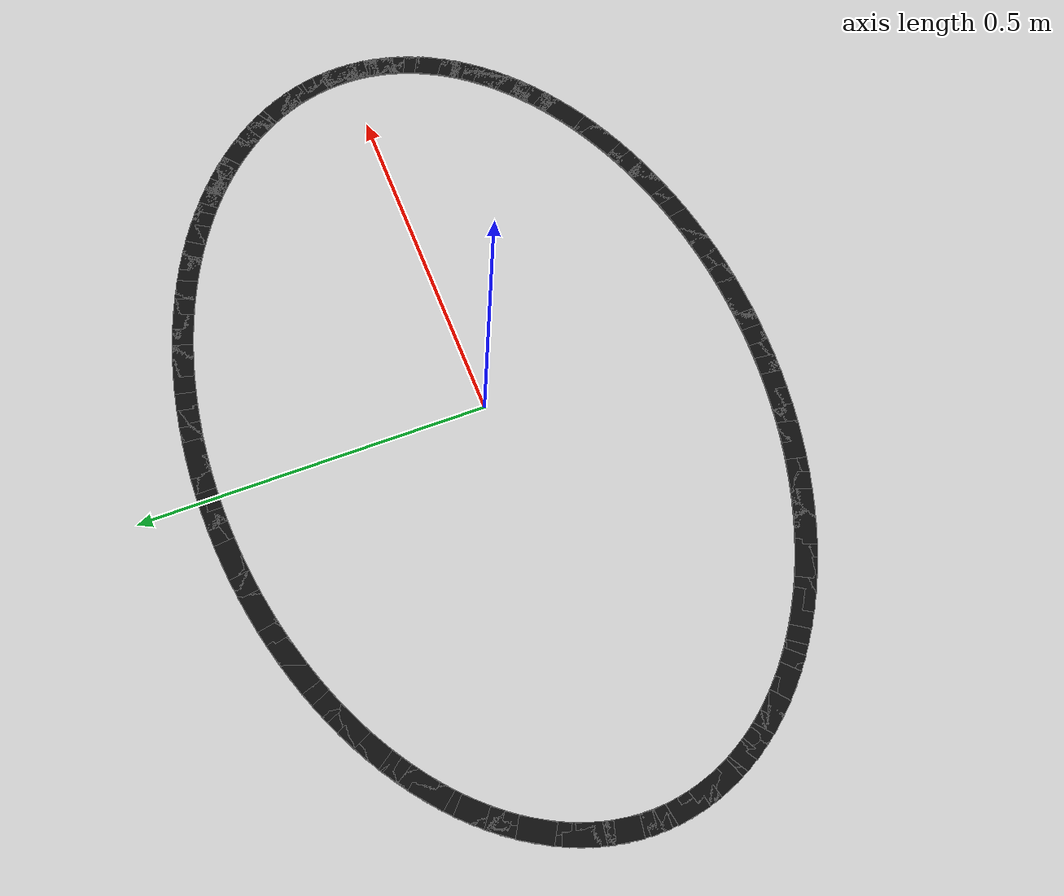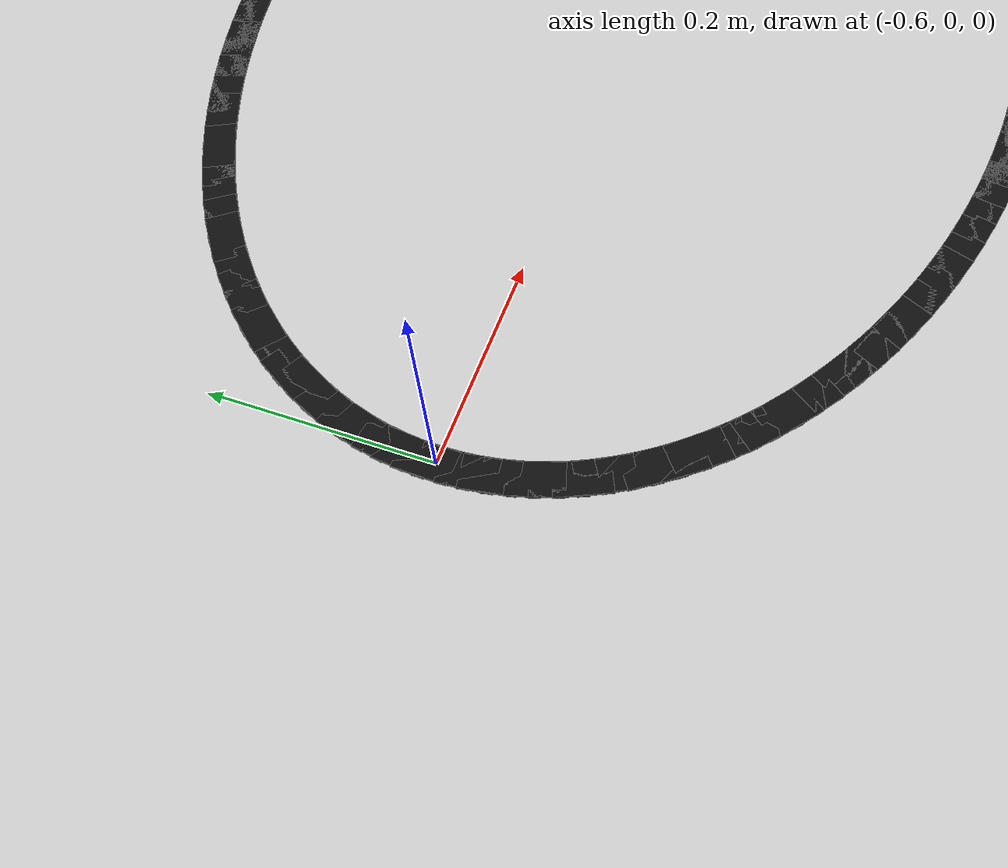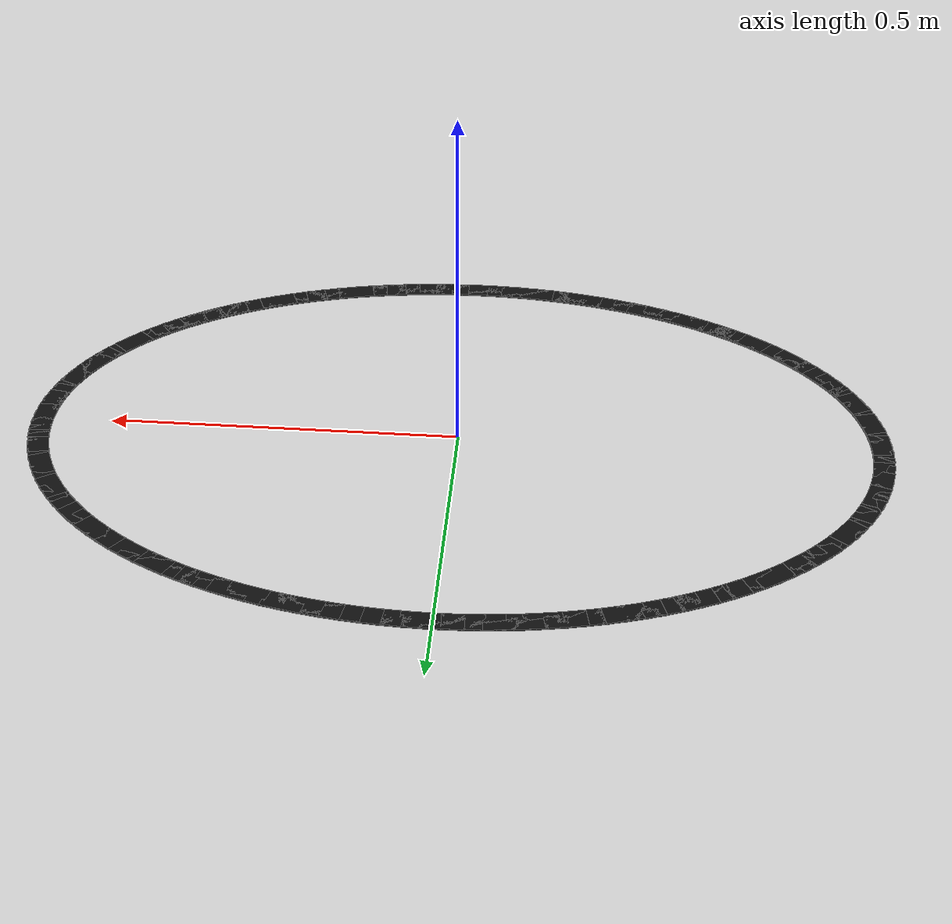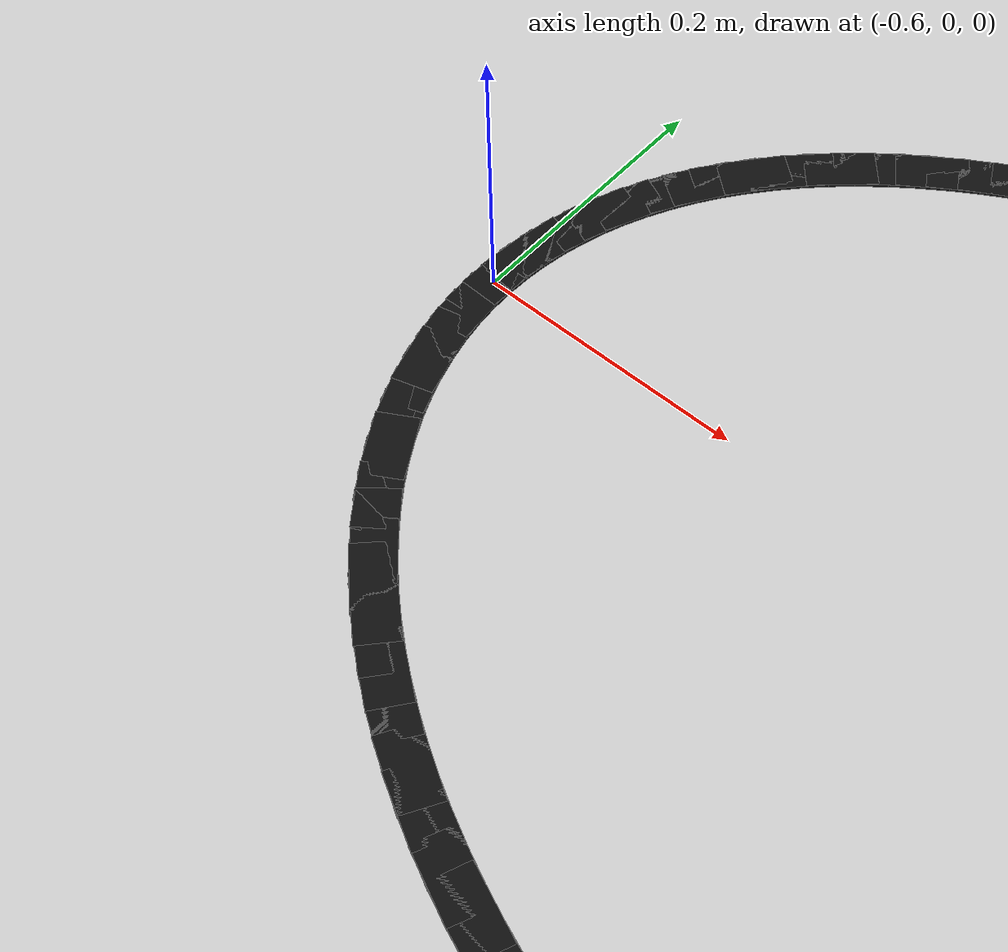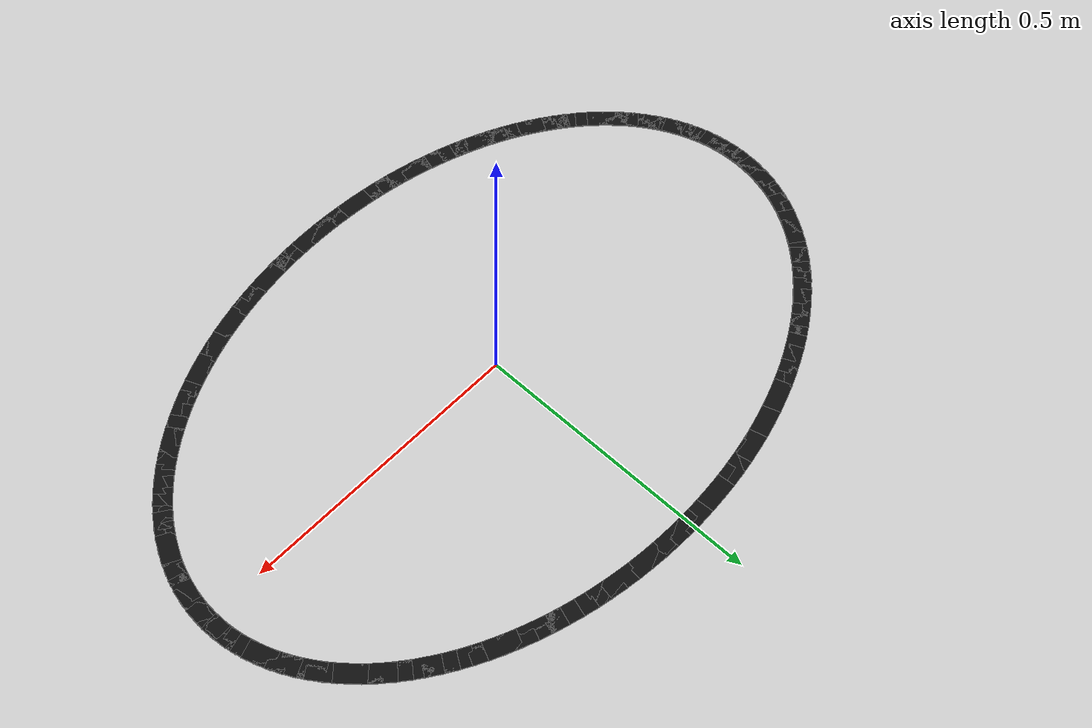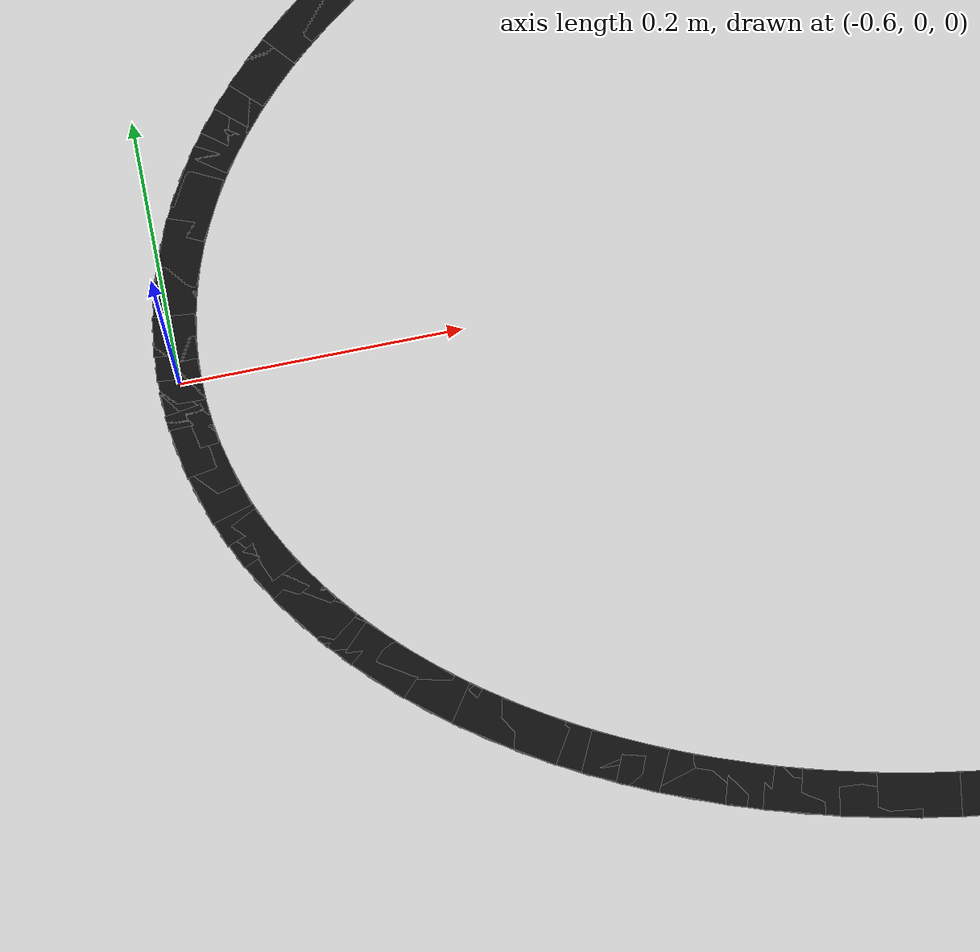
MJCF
<mujoco model="track_oval">
  <worldbody>
    <geom name="line_0" type="box" size="0.0237 0.015 0.001" pos="0.5997 0.0087 0.001" quat="0.695445 0 0 0.718579" contype="0" conaffinity="0" group="2" rgba="0.05 0.05 0.05 1"/>
    <geom name="line_1" type="box" size="0.0237 0.015 0.001" pos="0.5986 0.0262 0.001" quat="0.671624 0 0 0.740893" contype="0" conaffinity="0" group="2" rgba="0.05 0.05 0.05 1"/>
    <geom name="line_2" type="box" size="0.0238 0.015 0.001" pos="0.5963 0.0435 0.001" quat="0.647262 0 0 0.762268" contype="0" conaffinity="0" group="2" rgba="0.05 0.05 0.05 1"/>
    <geom name="line_3" type="box" size="0.0239 0.015 0.001" pos="0.5929 0.0608 0.001" quat="0.622513 0 0 0.782609" contype="0" conaffinity="0" group="2" rgba="0.05 0.05 0.05 1"/>
    <geom name="line_4" type="box" size="0.0239 0.015 0.001" pos="0.5883 0.0780 0.001" quat="0.597531 0 0 0.801846" contype="0" conaffinity="0" group="2" rgba="0.05 0.05 0.05 1"/>
    <geom name="line_5" type="box" size="0.0240 0.015 0.001" pos="0.5827 0.0951 0.001" quat="0.572464 0 0 0.819930" contype="0" conaffinity="0" group="2" rgba="0.05 0.05 0.05 1"/>
    <geom name="line_6" type="box" size="0.0241 0.015 0.001" pos="0.5759 0.1119 0.001" quat="0.547451 0 0 0.836838" contype="0" conaffinity="0" group="2" rgba="0.05 0.05 0.05 1"/>
    <geom name="line_7" type="box" size="0.0243 0.015 0.001" pos="0.5680 0.1285 0.001" quat="0.522615 0 0 0.852569" contype="0" conaffinity="0" group="2" rgba="0.05 0.05 0.05 1"/>
    <geom name="line_8" type="box" size="0.0244 0.015 0.001" pos="0.5591 0.1449 0.001" quat="0.498066 0 0 0.867139" contype="0" conaffinity="0" group="2" rgba="0.05 0.05 0.05 1"/>
    <geom name="line_9" type="box" size="0.0246 0.015 0.001" pos="0.5491 0.1611 0.001" quat="0.473893 0 0 0.880583" contype="0" conaffinity="0" group="2" rgba="0.05 0.05 0.05 1"/>
    <geom name="line_10" type="box" size="0.0247 0.015 0.001" pos="0.5380 0.1769 0.001" quat="0.450169 0 0 0.892944" contype="0" conaffinity="0" group="2" rgba="0.05 0.05 0.05 1"/>
    <geom name="line_11" type="box" size="0.0249 0.015 0.001" pos="0.5259 0.1923 0.001" quat="0.426948 0 0 0.904276" contype="0" conaffinity="0" group="2" rgba="0.05 0.05 0.05 1"/>
    <geom name="line_12" type="box" size="0.0251 0.015 0.001" pos="0.5128 0.2075 0.001" quat="0.404270 0 0 0.914639" contype="0" conaffinity="0" group="2" rgba="0.05 0.05 0.05 1"/>
    <geom name="line_13" type="box" size="0.0253 0.015 0.001" pos="0.4988 0.2222 0.001" quat="0.382160 0 0 0.924096" contype="0" conaffinity="0" group="2" rgba="0.05 0.05 0.05 1"/>
    <geom name="line_14" type="box" size="0.0255 0.015 0.001" pos="0.4838 0.2365 0.001" quat="0.360629 0 0 0.932709" contype="0" conaffinity="0" group="2" rgba="0.05 0.05 0.05 1"/>
    <geom name="line_15" type="box" size="0.0257 0.015 0.001" pos="0.4678 0.2503 0.001" quat="0.339680 0 0 0.940541" contype="0" conaffinity="0" group="2" rgba="0.05 0.05 0.05 1"/>
    <geom name="line_16" type="box" size="0.0258 0.015 0.001" pos="0.4510 0.2637 0.001" quat="0.319304 0 0 0.947652" contype="0" conaffinity="0" group="2" rgba="0.05 0.05 0.05 1"/>
    <geom name="line_17" type="box" size="0.0260 0.015 0.001" pos="0.4333 0.2765 0.001" quat="0.299488 0 0 0.954100" contype="0" conaffinity="0" group="2" rgba="0.05 0.05 0.05 1"/>
    <geom name="line_18" type="box" size="0.0262 0.015 0.001" pos="0.4148 0.2889 0.001" quat="0.280213 0 0 0.959938" contype="0" conaffinity="0" group="2" rgba="0.05 0.05 0.05 1"/>
    <geom name="line_19" type="box" size="0.0264 0.015 0.001" pos="0.3955 0.3007 0.001" quat="0.261454 0 0 0.965216" contype="0" conaffinity="0" group="2" rgba="0.05 0.05 0.05 1"/>
    <geom name="line_20" type="box" size="0.0266 0.015 0.001" pos="0.3755 0.3119 0.001" quat="0.243186 0 0 0.969980" contype="0" conaffinity="0" group="2" rgba="0.05 0.05 0.05 1"/>
    <geom name="line_21" type="box" size="0.0267 0.015 0.001" pos="0.3547 0.3225 0.001" quat="0.225379 0 0 0.974271" contype="0" conaffinity="0" group="2" rgba="0.05 0.05 0.05 1"/>
    <geom name="line_22" type="box" size="0.0269 0.015 0.001" pos="0.3333 0.3325 0.001" quat="0.208003 0 0 0.978128" contype="0" conaffinity="0" group="2" rgba="0.05 0.05 0.05 1"/>
    <geom name="line_23" type="box" size="0.0271 0.015 0.001" pos="0.3112 0.3419 0.001" quat="0.191027 0 0 0.981585" contype="0" conaffinity="0" group="2" rgba="0.05 0.05 0.05 1"/>
    <geom name="line_24" type="box" size="0.0272 0.015 0.001" pos="0.2885 0.3506 0.001" quat="0.174420 0 0 0.984671" contype="0" conaffinity="0" group="2" rgba="0.05 0.05 0.05 1"/>
    <geom name="line_25" type="box" size="0.0274 0.015 0.001" pos="0.2653 0.3587 0.001" quat="0.158149 0 0 0.987415" contype="0" conaffinity="0" group="2" rgba="0.05 0.05 0.05 1"/>
    <geom name="line_26" type="box" size="0.0275 0.015 0.001" pos="0.2416 0.3660 0.001" quat="0.142184 0 0 0.989840" contype="0" conaffinity="0" group="2" rgba="0.05 0.05 0.05 1"/>
    <geom name="line_27" type="box" size="0.0276 0.015 0.001" pos="0.2174 0.3727 0.001" quat="0.126494 0 0 0.991967" contype="0" conaffinity="0" group="2" rgba="0.05 0.05 0.05 1"/>
    <geom name="line_28" type="box" size="0.0277 0.015 0.001" pos="0.1928 0.3787 0.001" quat="0.111048 0 0 0.993815" contype="0" conaffinity="0" group="2" rgba="0.05 0.05 0.05 1"/>
    <geom name="line_29" type="box" size="0.0278 0.015 0.001" pos="0.1679 0.3839 0.001" quat="0.095815 0 0 0.995399" contype="0" conaffinity="0" group="2" rgba="0.05 0.05 0.05 1"/>
    <geom name="line_30" type="box" size="0.0279 0.015 0.001" pos="0.1426 0.3884 0.001" quat="0.080766 0 0 0.996733" contype="0" conaffinity="0" group="2" rgba="0.05 0.05 0.05 1"/>
    <geom name="line_31" type="box" size="0.0279 0.015 0.001" pos="0.1170 0.3922 0.001" quat="0.065872 0 0 0.997828" contype="0" conaffinity="0" group="2" rgba="0.05 0.05 0.05 1"/>
    <geom name="line_32" type="box" size="0.0280 0.015 0.001" pos="0.0913 0.3953 0.001" quat="0.051104 0 0 0.998693" contype="0" conaffinity="0" group="2" rgba="0.05 0.05 0.05 1"/>
    <geom name="line_33" type="box" size="0.0280 0.015 0.001" pos="0.0653 0.3975 0.001" quat="0.036433 0 0 0.999336" contype="0" conaffinity="0" group="2" rgba="0.05 0.05 0.05 1"/>
    <geom name="line_34" type="box" size="0.0281 0.015 0.001" pos="0.0392 0.3990 0.001" quat="0.021832 0 0 0.999762" contype="0" conaffinity="0" group="2" rgba="0.05 0.05 0.05 1"/>
    <geom name="line_35" type="box" size="0.0281 0.015 0.001" pos="0.0131 0.3998 0.001" quat="0.007273 0 0 0.999974" contype="0" conaffinity="0" group="2" rgba="0.05 0.05 0.05 1"/>
    <geom name="line_36" type="box" size="0.0281 0.015 0.001" pos="-0.0131 0.3998 0.001" quat="0.007273 0 0 -0.999974" contype="0" conaffinity="0" group="2" rgba="0.05 0.05 0.05 1"/>
    <geom name="line_37" type="box" size="0.0281 0.015 0.001" pos="-0.0392 0.3990 0.001" quat="0.021832 0 0 -0.999762" contype="0" conaffinity="0" group="2" rgba="0.05 0.05 0.05 1"/>
    <geom name="line_38" type="box" size="0.0280 0.015 0.001" pos="-0.0653 0.3975 0.001" quat="0.036433 0 0 -0.999336" contype="0" conaffinity="0" group="2" rgba="0.05 0.05 0.05 1"/>
    <geom name="line_39" type="box" size="0.0280 0.015 0.001" pos="-0.0913 0.3953 0.001" quat="0.051104 0 0 -0.998693" contype="0" conaffinity="0" group="2" rgba="0.05 0.05 0.05 1"/>
    <geom name="line_40" type="box" size="0.0279 0.015 0.001" pos="-0.1170 0.3922 0.001" quat="0.065872 0 0 -0.997828" contype="0" conaffinity="0" group="2" rgba="0.05 0.05 0.05 1"/>
    <geom name="line_41" type="box" size="0.0279 0.015 0.001" pos="-0.1426 0.3884 0.001" quat="0.080766 0 0 -0.996733" contype="0" conaffinity="0" group="2" rgba="0.05 0.05 0.05 1"/>
    <geom name="line_42" type="box" size="0.0278 0.015 0.001" pos="-0.1679 0.3839 0.001" quat="0.095815 0 0 -0.995399" contype="0" conaffinity="0" group="2" rgba="0.05 0.05 0.05 1"/>
    <geom name="line_43" type="box" size="0.0277 0.015 0.001" pos="-0.1928 0.3787 0.001" quat="0.111048 0 0 -0.993815" contype="0" conaffinity="0" group="2" rgba="0.05 0.05 0.05 1"/>
    <geom name="line_44" type="box" size="0.0276 0.015 0.001" pos="-0.2174 0.3727 0.001" quat="0.126494 0 0 -0.991967" contype="0" conaffinity="0" group="2" rgba="0.05 0.05 0.05 1"/>
    <geom name="line_45" type="box" size="0.0275 0.015 0.001" pos="-0.2416 0.3660 0.001" quat="0.142184 0 0 -0.989840" contype="0" conaffinity="0" group="2" rgba="0.05 0.05 0.05 1"/>
    <geom name="line_46" type="box" size="0.0274 0.015 0.001" pos="-0.2653 0.3587 0.001" quat="0.158149 0 0 -0.987415" contype="0" conaffinity="0" group="2" rgba="0.05 0.05 0.05 1"/>
    <geom name="line_47" type="box" size="0.0272 0.015 0.001" pos="-0.2885 0.3506 0.001" quat="0.174420 0 0 -0.984671" contype="0" conaffinity="0" group="2" rgba="0.05 0.05 0.05 1"/>
    <geom name="line_48" type="box" size="0.0271 0.015 0.001" pos="-0.3112 0.3419 0.001" quat="0.191027 0 0 -0.981585" contype="0" conaffinity="0" group="2" rgba="0.05 0.05 0.05 1"/>
    <geom name="line_49" type="box" size="0.0269 0.015 0.001" pos="-0.3333 0.3325 0.001" quat="0.208003 0 0 -0.978128" contype="0" conaffinity="0" group="2" rgba="0.05 0.05 0.05 1"/>
    <geom name="line_50" type="box" size="0.0267 0.015 0.001" pos="-0.3547 0.3225 0.001" quat="0.225379 0 0 -0.974271" contype="0" conaffinity="0" group="2" rgba="0.05 0.05 0.05 1"/>
    <geom name="line_51" type="box" size="0.0266 0.015 0.001" pos="-0.3755 0.3119 0.001" quat="0.243186 0 0 -0.969980" contype="0" conaffinity="0" group="2" rgba="0.05 0.05 0.05 1"/>
    <geom name="line_52" type="box" size="0.0264 0.015 0.001" pos="-0.3955 0.3007 0.001" quat="0.261454 0 0 -0.965216" contype="0" conaffinity="0" group="2" rgba="0.05 0.05 0.05 1"/>
    <geom name="line_53" type="box" size="0.0262 0.015 0.001" pos="-0.4148 0.2889 0.001" quat="0.280213 0 0 -0.959938" contype="0" conaffinity="0" group="2" rgba="0.05 0.05 0.05 1"/>
    <geom name="line_54" type="box" size="0.0260 0.015 0.001" pos="-0.4333 0.2765 0.001" quat="0.299488 0 0 -0.954100" contype="0" conaffinity="0" group="2" rgba="0.05 0.05 0.05 1"/>
    <geom name="line_55" type="box" size="0.0258 0.015 0.001" pos="-0.4510 0.2637 0.001" quat="0.319304 0 0 -0.947652" contype="0" conaffinity="0" group="2" rgba="0.05 0.05 0.05 1"/>
    <geom name="line_56" type="box" size="0.0257 0.015 0.001" pos="-0.4678 0.2503 0.001" quat="0.339680 0 0 -0.940541" contype="0" conaffinity="0" group="2" rgba="0.05 0.05 0.05 1"/>
    <geom name="line_57" type="box" size="0.0255 0.015 0.001" pos="-0.4838 0.2365 0.001" quat="0.360629 0 0 -0.932709" contype="0" conaffinity="0" group="2" rgba="0.05 0.05 0.05 1"/>
    <geom name="line_58" type="box" size="0.0253 0.015 0.001" pos="-0.4988 0.2222 0.001" quat="0.382160 0 0 -0.924096" contype="0" conaffinity="0" group="2" rgba="0.05 0.05 0.05 1"/>
    <geom name="line_59" type="box" size="0.0251 0.015 0.001" pos="-0.5128 0.2075 0.001" quat="0.404270 0 0 -0.914639" contype="0" conaffinity="0" group="2" rgba="0.05 0.05 0.05 1"/>
    <geom name="line_60" type="box" size="0.0249 0.015 0.001" pos="-0.5259 0.1923 0.001" quat="0.426948 0 0 -0.904276" contype="0" conaffinity="0" group="2" rgba="0.05 0.05 0.05 1"/>
    <geom name="line_61" type="box" size="0.0247 0.015 0.001" pos="-0.5380 0.1769 0.001" quat="0.450169 0 0 -0.892944" contype="0" conaffinity="0" group="2" rgba="0.05 0.05 0.05 1"/>
    <geom name="line_62" type="box" size="0.0246 0.015 0.001" pos="-0.5491 0.1611 0.001" quat="0.473893 0 0 -0.880583" contype="0" conaffinity="0" group="2" rgba="0.05 0.05 0.05 1"/>
    <geom name="line_63" type="box" size="0.0244 0.015 0.001" pos="-0.5591 0.1449 0.001" quat="0.498066 0 0 -0.867139" contype="0" conaffinity="0" group="2" rgba="0.05 0.05 0.05 1"/>
    <geom name="line_64" type="box" size="0.0243 0.015 0.001" pos="-0.5680 0.1285 0.001" quat="0.522615 0 0 -0.852569" contype="0" conaffinity="0" group="2" rgba="0.05 0.05 0.05 1"/>
    <geom name="line_65" type="box" size="0.0241 0.015 0.001" pos="-0.5759 0.1119 0.001" quat="0.547451 0 0 -0.836838" contype="0" conaffinity="0" group="2" rgba="0.05 0.05 0.05 1"/>
    <geom name="line_66" type="box" size="0.0240 0.015 0.001" pos="-0.5827 0.0951 0.001" quat="0.572464 0 0 -0.819930" contype="0" conaffinity="0" group="2" rgba="0.05 0.05 0.05 1"/>
    <geom name="line_67" type="box" size="0.0239 0.015 0.001" pos="-0.5883 0.0780 0.001" quat="0.597531 0 0 -0.801846" contype="0" conaffinity="0" group="2" rgba="0.05 0.05 0.05 1"/>
    <geom name="line_68" type="box" size="0.0239 0.015 0.001" pos="-0.5929 0.0608 0.001" quat="0.622513 0 0 -0.782609" contype="0" conaffinity="0" group="2" rgba="0.05 0.05 0.05 1"/>
    <geom name="line_69" type="box" size="0.0238 0.015 0.001" pos="-0.5963 0.0435 0.001" quat="0.647262 0 0 -0.762268" contype="0" conaffinity="0" group="2" rgba="0.05 0.05 0.05 1"/>
    <geom name="line_70" type="box" size="0.0237 0.015 0.001" pos="-0.5986 0.0262 0.001" quat="0.671624 0 0 -0.740893" contype="0" conaffinity="0" group="2" rgba="0.05 0.05 0.05 1"/>
    <geom name="line_71" type="box" size="0.0237 0.015 0.001" pos="-0.5997 0.0087 0.001" quat="0.695445 0 0 -0.718579" contype="0" conaffinity="0" group="2" rgba="0.05 0.05 0.05 1"/>
    <geom name="line_72" type="box" size="0.0237 0.015 0.001" pos="-0.5997 -0.0087 0.001" quat="0.718579 0 0 -0.695445" contype="0" conaffinity="0" group="2" rgba="0.05 0.05 0.05 1"/>
    <geom name="line_73" type="box" size="0.0237 0.015 0.001" pos="-0.5986 -0.0262 0.001" quat="0.740893 0 0 -0.671624" contype="0" conaffinity="0" group="2" rgba="0.05 0.05 0.05 1"/>
    <geom name="line_74" type="box" size="0.0238 0.015 0.001" pos="-0.5963 -0.0435 0.001" quat="0.762268 0 0 -0.647262" contype="0" conaffinity="0" group="2" rgba="0.05 0.05 0.05 1"/>
    <geom name="line_75" type="box" size="0.0239 0.015 0.001" pos="-0.5929 -0.0608 0.001" quat="0.782609 0 0 -0.622513" contype="0" conaffinity="0" group="2" rgba="0.05 0.05 0.05 1"/>
    <geom name="line_76" type="box" size="0.0239 0.015 0.001" pos="-0.5883 -0.0780 0.001" quat="0.801846 0 0 -0.597531" contype="0" conaffinity="0" group="2" rgba="0.05 0.05 0.05 1"/>
    <geom name="line_77" type="box" size="0.0240 0.015 0.001" pos="-0.5827 -0.0951 0.001" quat="0.819930 0 0 -0.572464" contype="0" conaffinity="0" group="2" rgba="0.05 0.05 0.05 1"/>
    <geom name="line_78" type="box" size="0.0241 0.015 0.001" pos="-0.5759 -0.1119 0.001" quat="0.836838 0 0 -0.547451" contype="0" conaffinity="0" group="2" rgba="0.05 0.05 0.05 1"/>
    <geom name="line_79" type="box" size="0.0243 0.015 0.001" pos="-0.5680 -0.1285 0.001" quat="0.852569 0 0 -0.522615" contype="0" conaffinity="0" group="2" rgba="0.05 0.05 0.05 1"/>
    <geom name="line_80" type="box" size="0.0244 0.015 0.001" pos="-0.5591 -0.1449 0.001" quat="0.867139 0 0 -0.498066" contype="0" conaffinity="0" group="2" rgba="0.05 0.05 0.05 1"/>
    <geom name="line_81" type="box" size="0.0246 0.015 0.001" pos="-0.5491 -0.1611 0.001" quat="0.880583 0 0 -0.473893" contype="0" conaffinity="0" group="2" rgba="0.05 0.05 0.05 1"/>
    <geom name="line_82" type="box" size="0.0247 0.015 0.001" pos="-0.5380 -0.1769 0.001" quat="0.892944 0 0 -0.450169" contype="0" conaffinity="0" group="2" rgba="0.05 0.05 0.05 1"/>
    <geom name="line_83" type="box" size="0.0249 0.015 0.001" pos="-0.5259 -0.1923 0.001" quat="0.904276 0 0 -0.426948" contype="0" conaffinity="0" group="2" rgba="0.05 0.05 0.05 1"/>
    <geom name="line_84" type="box" size="0.0251 0.015 0.001" pos="-0.5128 -0.2075 0.001" quat="0.914639 0 0 -0.404270" contype="0" conaffinity="0" group="2" rgba="0.05 0.05 0.05 1"/>
    <geom name="line_85" type="box" size="0.0253 0.015 0.001" pos="-0.4988 -0.2222 0.001" quat="0.924096 0 0 -0.382160" contype="0" conaffinity="0" group="2" rgba="0.05 0.05 0.05 1"/>
    <geom name="line_86" type="box" size="0.0255 0.015 0.001" pos="-0.4838 -0.2365 0.001" quat="0.932709 0 0 -0.360629" contype="0" conaffinity="0" group="2" rgba="0.05 0.05 0.05 1"/>
    <geom name="line_87" type="box" size="0.0257 0.015 0.001" pos="-0.4678 -0.2503 0.001" quat="0.940541 0 0 -0.339680" contype="0" conaffinity="0" group="2" rgba="0.05 0.05 0.05 1"/>
    <geom name="line_88" type="box" size="0.0258 0.015 0.001" pos="-0.4510 -0.2637 0.001" quat="0.947652 0 0 -0.319304" contype="0" conaffinity="0" group="2" rgba="0.05 0.05 0.05 1"/>
    <geom name="line_89" type="box" size="0.0260 0.015 0.001" pos="-0.4333 -0.2765 0.001" quat="0.954100 0 0 -0.299488" contype="0" conaffinity="0" group="2" rgba="0.05 0.05 0.05 1"/>
    <geom name="line_90" type="box" size="0.0262 0.015 0.001" pos="-0.4148 -0.2889 0.001" quat="0.959938 0 0 -0.280213" contype="0" conaffinity="0" group="2" rgba="0.05 0.05 0.05 1"/>
    <geom name="line_91" type="box" size="0.0264 0.015 0.001" pos="-0.3955 -0.3007 0.001" quat="0.965216 0 0 -0.261454" contype="0" conaffinity="0" group="2" rgba="0.05 0.05 0.05 1"/>
    <geom name="line_92" type="box" size="0.0266 0.015 0.001" pos="-0.3755 -0.3119 0.001" quat="0.969980 0 0 -0.243186" contype="0" conaffinity="0" group="2" rgba="0.05 0.05 0.05 1"/>
    <geom name="line_93" type="box" size="0.0267 0.015 0.001" pos="-0.3547 -0.3225 0.001" quat="0.974271 0 0 -0.225379" contype="0" conaffinity="0" group="2" rgba="0.05 0.05 0.05 1"/>
    <geom name="line_94" type="box" size="0.0269 0.015 0.001" pos="-0.3333 -0.3325 0.001" quat="0.978128 0 0 -0.208003" contype="0" conaffinity="0" group="2" rgba="0.05 0.05 0.05 1"/>
    <geom name="line_95" type="box" size="0.0271 0.015 0.001" pos="-0.3112 -0.3419 0.001" quat="0.981585 0 0 -0.191027" contype="0" conaffinity="0" group="2" rgba="0.05 0.05 0.05 1"/>
    <geom name="line_96" type="box" size="0.0272 0.015 0.001" pos="-0.2885 -0.3506 0.001" quat="0.984671 0 0 -0.174420" contype="0" conaffinity="0" group="2" rgba="0.05 0.05 0.05 1"/>
    <geom name="line_97" type="box" size="0.0274 0.015 0.001" pos="-0.2653 -0.3587 0.001" quat="0.987415 0 0 -0.158149" contype="0" conaffinity="0" group="2" rgba="0.05 0.05 0.05 1"/>
    <geom name="line_98" type="box" size="0.0275 0.015 0.001" pos="-0.2416 -0.3660 0.001" quat="0.989840 0 0 -0.142184" contype="0" conaffinity="0" group="2" rgba="0.05 0.05 0.05 1"/>
    <geom name="line_99" type="box" size="0.0276 0.015 0.001" pos="-0.2174 -0.3727 0.001" quat="0.991967 0 0 -0.126494" contype="0" conaffinity="0" group="2" rgba="0.05 0.05 0.05 1"/>
    <geom name="line_100" type="box" size="0.0277 0.015 0.001" pos="-0.1928 -0.3787 0.001" quat="0.993815 0 0 -0.111048" contype="0" conaffinity="0" group="2" rgba="0.05 0.05 0.05 1"/>
    <geom name="line_101" type="box" size="0.0278 0.015 0.001" pos="-0.1679 -0.3839 0.001" quat="0.995399 0 0 -0.095815" contype="0" conaffinity="0" group="2" rgba="0.05 0.05 0.05 1"/>
    <geom name="line_102" type="box" size="0.0279 0.015 0.001" pos="-0.1426 -0.3884 0.001" quat="0.996733 0 0 -0.080766" contype="0" conaffinity="0" group="2" rgba="0.05 0.05 0.05 1"/>
    <geom name="line_103" type="box" size="0.0279 0.015 0.001" pos="-0.1170 -0.3922 0.001" quat="0.997828 0 0 -0.065872" contype="0" conaffinity="0" group="2" rgba="0.05 0.05 0.05 1"/>
    <geom name="line_104" type="box" size="0.0280 0.015 0.001" pos="-0.0913 -0.3953 0.001" quat="0.998693 0 0 -0.051104" contype="0" conaffinity="0" group="2" rgba="0.05 0.05 0.05 1"/>
    <geom name="line_105" type="box" size="0.0280 0.015 0.001" pos="-0.0653 -0.3975 0.001" quat="0.999336 0 0 -0.036433" contype="0" conaffinity="0" group="2" rgba="0.05 0.05 0.05 1"/>
    <geom name="line_106" type="box" size="0.0281 0.015 0.001" pos="-0.0392 -0.3990 0.001" quat="0.999762 0 0 -0.021832" contype="0" conaffinity="0" group="2" rgba="0.05 0.05 0.05 1"/>
    <geom name="line_107" type="box" size="0.0281 0.015 0.001" pos="-0.0131 -0.3998 0.001" quat="0.999974 0 0 -0.007273" contype="0" conaffinity="0" group="2" rgba="0.05 0.05 0.05 1"/>
    <geom name="line_108" type="box" size="0.0281 0.015 0.001" pos="0.0131 -0.3998 0.001" quat="0.999974 0 0 0.007273" contype="0" conaffinity="0" group="2" rgba="0.05 0.05 0.05 1"/>
    <geom name="line_109" type="box" size="0.0281 0.015 0.001" pos="0.0392 -0.3990 0.001" quat="0.999762 0 0 0.021832" contype="0" conaffinity="0" group="2" rgba="0.05 0.05 0.05 1"/>
    <geom name="line_110" type="box" size="0.0280 0.015 0.001" pos="0.0653 -0.3975 0.001" quat="0.999336 0 0 0.036433" contype="0" conaffinity="0" group="2" rgba="0.05 0.05 0.05 1"/>
    <geom name="line_111" type="box" size="0.0280 0.015 0.001" pos="0.0913 -0.3953 0.001" quat="0.998693 0 0 0.051104" contype="0" conaffinity="0" group="2" rgba="0.05 0.05 0.05 1"/>
    <geom name="line_112" type="box" size="0.0279 0.015 0.001" pos="0.1170 -0.3922 0.001" quat="0.997828 0 0 0.065872" contype="0" conaffinity="0" group="2" rgba="0.05 0.05 0.05 1"/>
    <geom name="line_113" type="box" size="0.0279 0.015 0.001" pos="0.1426 -0.3884 0.001" quat="0.996733 0 0 0.080766" contype="0" conaffinity="0" group="2" rgba="0.05 0.05 0.05 1"/>
    <geom name="line_114" type="box" size="0.0278 0.015 0.001" pos="0.1679 -0.3839 0.001" quat="0.995399 0 0 0.095815" contype="0" conaffinity="0" group="2" rgba="0.05 0.05 0.05 1"/>
    <geom name="line_115" type="box" size="0.0277 0.015 0.001" pos="0.1928 -0.3787 0.001" quat="0.993815 0 0 0.111048" contype="0" conaffinity="0" group="2" rgba="0.05 0.05 0.05 1"/>
    <geom name="line_116" type="box" size="0.0276 0.015 0.001" pos="0.2174 -0.3727 0.001" quat="0.991967 0 0 0.126494" contype="0" conaffinity="0" group="2" rgba="0.05 0.05 0.05 1"/>
    <geom name="line_117" type="box" size="0.0275 0.015 0.001" pos="0.2416 -0.3660 0.001" quat="0.989840 0 0 0.142184" contype="0" conaffinity="0" group="2" rgba="0.05 0.05 0.05 1"/>
    <geom name="line_118" type="box" size="0.0274 0.015 0.001" pos="0.2653 -0.3587 0.001" quat="0.987415 0 0 0.158149" contype="0" conaffinity="0" group="2" rgba="0.05 0.05 0.05 1"/>
    <geom name="line_119" type="box" size="0.0272 0.015 0.001" pos="0.2885 -0.3506 0.001" quat="0.984671 0 0 0.174420" contype="0" conaffinity="0" group="2" rgba="0.05 0.05 0.05 1"/>
    <geom name="line_120" type="box" size="0.0271 0.015 0.001" pos="0.3112 -0.3419 0.001" quat="0.981585 0 0 0.191027" contype="0" conaffinity="0" group="2" rgba="0.05 0.05 0.05 1"/>
    <geom name="line_121" type="box" size="0.0269 0.015 0.001" pos="0.3333 -0.3325 0.001" quat="0.978128 0 0 0.208003" contype="0" conaffinity="0" group="2" rgba="0.05 0.05 0.05 1"/>
    <geom name="line_122" type="box" size="0.0267 0.015 0.001" pos="0.3547 -0.3225 0.001" quat="0.974271 0 0 0.225379" contype="0" conaffinity="0" group="2" rgba="0.05 0.05 0.05 1"/>
    <geom name="line_123" type="box" size="0.0266 0.015 0.001" pos="0.3755 -0.3119 0.001" quat="0.969980 0 0 0.243186" contype="0" conaffinity="0" group="2" rgba="0.05 0.05 0.05 1"/>
    <geom name="line_124" type="box" size="0.0264 0.015 0.001" pos="0.3955 -0.3007 0.001" quat="0.965216 0 0 0.261454" contype="0" conaffinity="0" group="2" rgba="0.05 0.05 0.05 1"/>
    <geom name="line_125" type="box" size="0.0262 0.015 0.001" pos="0.4148 -0.2889 0.001" quat="0.959938 0 0 0.280213" contype="0" conaffinity="0" group="2" rgba="0.05 0.05 0.05 1"/>
    <geom name="line_126" type="box" size="0.0260 0.015 0.001" pos="0.4333 -0.2765 0.001" quat="0.954100 0 0 0.299488" contype="0" conaffinity="0" group="2" rgba="0.05 0.05 0.05 1"/>
    <geom name="line_127" type="box" size="0.0258 0.015 0.001" pos="0.4510 -0.2637 0.001" quat="0.947652 0 0 0.319304" contype="0" conaffinity="0" group="2" rgba="0.05 0.05 0.05 1"/>
    <geom name="line_128" type="box" size="0.0257 0.015 0.001" pos="0.4678 -0.2503 0.001" quat="0.940541 0 0 0.339680" contype="0" conaffinity="0" group="2" rgba="0.05 0.05 0.05 1"/>
    <geom name="line_129" type="box" size="0.0255 0.015 0.001" pos="0.4838 -0.2365 0.001" quat="0.932709 0 0 0.360629" contype="0" conaffinity="0" group="2" rgba="0.05 0.05 0.05 1"/>
    <geom name="line_130" type="box" size="0.0253 0.015 0.001" pos="0.4988 -0.2222 0.001" quat="0.924096 0 0 0.382160" contype="0" conaffinity="0" group="2" rgba="0.05 0.05 0.05 1"/>
    <geom name="line_131" type="box" size="0.0251 0.015 0.001" pos="0.5128 -0.2075 0.001" quat="0.914639 0 0 0.404270" contype="0" conaffinity="0" group="2" rgba="0.05 0.05 0.05 1"/>
    <geom name="line_132" type="box" size="0.0249 0.015 0.001" pos="0.5259 -0.1923 0.001" quat="0.904276 0 0 0.426948" contype="0" conaffinity="0" group="2" rgba="0.05 0.05 0.05 1"/>
    <geom name="line_133" type="box" size="0.0247 0.015 0.001" pos="0.5380 -0.1769 0.001" quat="0.892944 0 0 0.450169" contype="0" conaffinity="0" group="2" rgba="0.05 0.05 0.05 1"/>
    <geom name="line_134" type="box" size="0.0246 0.015 0.001" pos="0.5491 -0.1611 0.001" quat="0.880583 0 0 0.473893" contype="0" conaffinity="0" group="2" rgba="0.05 0.05 0.05 1"/>
    <geom name="line_135" type="box" size="0.0244 0.015 0.001" pos="0.5591 -0.1449 0.001" quat="0.867139 0 0 0.498066" contype="0" conaffinity="0" group="2" rgba="0.05 0.05 0.05 1"/>
    <geom name="line_136" type="box" size="0.0243 0.015 0.001" pos="0.5680 -0.1285 0.001" quat="0.852569 0 0 0.522615" contype="0" conaffinity="0" group="2" rgba="0.05 0.05 0.05 1"/>
    <geom name="line_137" type="box" size="0.0241 0.015 0.001" pos="0.5759 -0.1119 0.001" quat="0.836838 0 0 0.547451" contype="0" conaffinity="0" group="2" rgba="0.05 0.05 0.05 1"/>
    <geom name="line_138" type="box" size="0.0240 0.015 0.001" pos="0.5827 -0.0951 0.001" quat="0.819930 0 0 0.572464" contype="0" conaffinity="0" group="2" rgba="0.05 0.05 0.05 1"/>
    <geom name="line_139" type="box" size="0.0239 0.015 0.001" pos="0.5883 -0.0780 0.001" quat="0.801846 0 0 0.597531" contype="0" conaffinity="0" group="2" rgba="0.05 0.05 0.05 1"/>
    <geom name="line_140" type="box" size="0.0239 0.015 0.001" pos="0.5929 -0.0608 0.001" quat="0.782609 0 0 0.622513" contype="0" conaffinity="0" group="2" rgba="0.05 0.05 0.05 1"/>
    <geom name="line_141" type="box" size="0.0238 0.015 0.001" pos="0.5963 -0.0435 0.001" quat="0.762268 0 0 0.647262" contype="0" conaffinity="0" group="2" rgba="0.05 0.05 0.05 1"/>
    <geom name="line_142" type="box" size="0.0237 0.015 0.001" pos="0.5986 -0.0262 0.001" quat="0.740893 0 0 0.671624" contype="0" conaffinity="0" group="2" rgba="0.05 0.05 0.05 1"/>
    <geom name="line_143" type="box" size="0.0237 0.015 0.001" pos="0.5997 -0.0087 0.001" quat="0.718579 0 0 0.695445" contype="0" conaffinity="0" group="2" rgba="0.05 0.05 0.05 1"/>
  </worldbody>
</mujoco>
